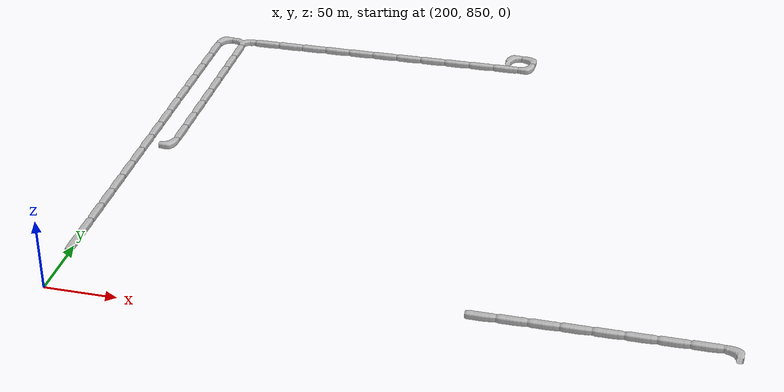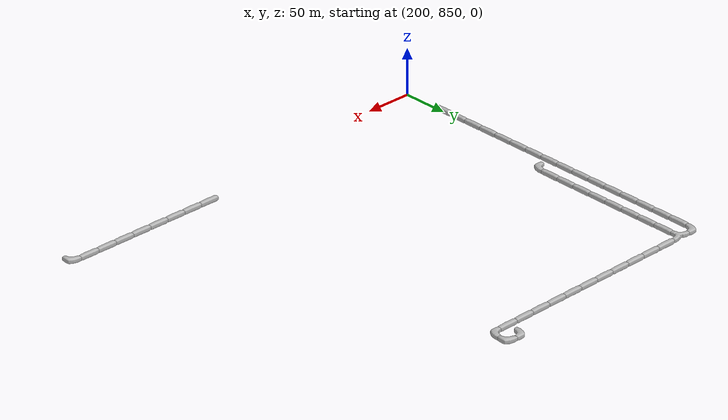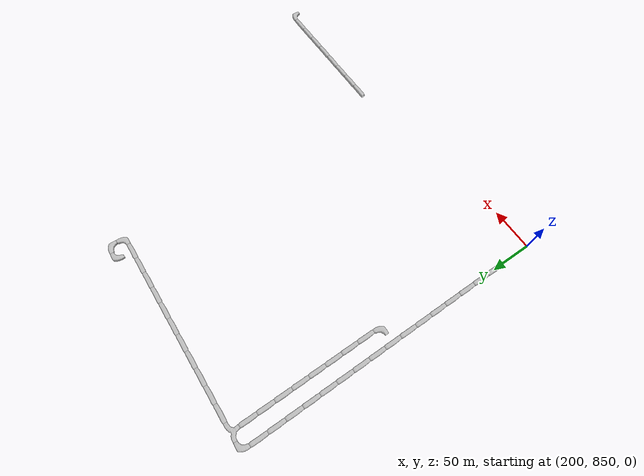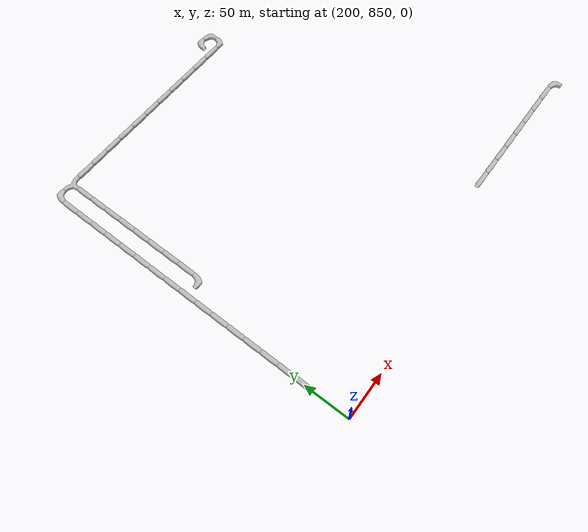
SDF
<sdf version="1.6">
 <world name="cave_8000_0">
  <include>
   <static>true</static>
   <name>cave_24_44</name>
   <pose>480 880 0 0 0 1.5707963267948966</pose>
   <uri>model://cave_straight_20m</uri>
  </include>
  <include>
   <static>true</static>
   <name>cave_25_44</name>
   <pose>500 880 0 0 0 1.5707963267948966</pose>
   <uri>model://cave_straight_20m</uri>
  </include>
  <include>
   <static>true</static>
   <name>cave_26_44</name>
   <pose>520 880 0 0 0 1.5707963267948966</pose>
   <uri>model://cave_straight_20m</uri>
  </include>
  <include>
   <static>true</static>
   <name>cave_27_44</name>
   <pose>540 880 0 0 0 1.5707963267948966</pose>
   <uri>model://cave_straight_20m</uri>
  </include>
  <include>
   <static>true</static>
   <name>cave_28_44</name>
   <pose>560 880 0 0 0 1.5707963267948966</pose>
   <uri>model://cave_straight_20m</uri>
  </include>
  <include>
   <static>true</static>
   <name>cave_29_44</name>
   <pose>580 880 0 0 0 1.5707963267948966</pose>
   <uri>model://cave_straight_20m</uri>
  </include>
  <include>
   <static>true</static>
   <name>cave_30_44</name>
   <pose>600 880 0 0 0 1.5707963267948966</pose>
   <uri>model://cave_straight_20m</uri>
  </include>
  <include>
   <static>true</static>
   <name>cave_31_44</name>
   <pose>620 880 0 0 0 1.5707963267948966</pose>
   <uri>model://cave_straight_20m</uri>
  </include>
  <include>
   <static>true</static>
   <name>cave_32_44</name>
   <pose>640 880 0 0 0 3.141592653589793</pose>
   <uri>model://cave_L_20m</uri>
  </include>
  <include>
   <static>true</static>
   <name>cave_10_45</name>
   <pose>200 900 0 0 0 0.0</pose>
   <uri>model://cave_straight_20m</uri>
  </include>
  <include>
   <static>true</static>
   <name>cave_10_46</name>
   <pose>200 920 0 0 0 0.0</pose>
   <uri>model://cave_straight_20m</uri>
  </include>
  <include>
   <static>true</static>
   <name>cave_10_47</name>
   <pose>200 940 0 0 0 0.0</pose>
   <uri>model://cave_straight_20m</uri>
  </include>
  <include>
   <static>true</static>
   <name>cave_10_48</name>
   <pose>200 960 0 0 0 0.0</pose>
   <uri>model://cave_straight_20m</uri>
  </include>
  <include>
   <static>true</static>
   <name>cave_10_49</name>
   <pose>200 980 0 0 0 0.0</pose>
   <uri>model://cave_straight_20m</uri>
  </include>
  <include>
   <static>true</static>
   <name>cave_10_50</name>
   <pose>200 1000 0 0 0 0.0</pose>
   <uri>model://cave_straight_20m</uri>
  </include>
  <include>
   <static>true</static>
   <name>cave_10_51</name>
   <pose>200 1020 0 0 0 0.0</pose>
   <uri>model://cave_straight_20m</uri>
  </include>
  <include>
   <static>true</static>
   <name>cave_10_52</name>
   <pose>200 1040 0 0 0 0.0</pose>
   <uri>model://cave_straight_20m</uri>
  </include>
  <include>
   <static>true</static>
   <name>cave_10_53</name>
   <pose>200 1060 0 0 0 0.0</pose>
   <uri>model://cave_straight_20m</uri>
  </include>
  <include>
   <static>true</static>
   <name>cave_10_54</name>
   <pose>200 1080 0 0 0 0.0</pose>
   <uri>model://cave_straight_20m</uri>
  </include>
  <include>
   <static>true</static>
   <name>cave_10_55</name>
   <pose>200 1100 0 0 0 0.0</pose>
   <uri>model://cave_straight_20m</uri>
  </include>
  <include>
   <static>true</static>
   <name>cave_10_56</name>
   <pose>200 1120 0 0 0 0.0</pose>
   <uri>model://cave_straight_20m</uri>
  </include>
  <include>
   <static>true</static>
   <name>cave_10_57</name>
   <pose>200 1140 0 0 0 0.0</pose>
   <uri>model://cave_straight_20m</uri>
  </include>
  <include>
   <static>true</static>
   <name>cave_10_58</name>
   <pose>200 1160 0 0 0 0.0</pose>
   <uri>model://cave_straight_20m</uri>
  </include>
  <include>
   <static>true</static>
   <name>cave_10_59</name>
   <pose>200 1180 0 0 0 0.0</pose>
   <uri>model://cave_straight_20m</uri>
  </include>
  <include>
   <static>true</static>
   <name>cave_10_60</name>
   <pose>200 1200 0 0 0 0.0</pose>
   <uri>model://cave_straight_20m</uri>
  </include>
  <include>
   <static>true</static>
   <name>cave_10_61</name>
   <pose>200 1220 0 0 0 -1.5707963267948966</pose>
   <uri>model://cave_L_20m</uri>
  </include>
  <include>
   <static>true</static>
   <name>cave_11_61</name>
   <pose>220 1220 0 0 0 3.141592653589793</pose>
   <uri>model://cave_3way_20m</uri>
  </include>
  <include>
   <static>true</static>
   <name>cave_12_61</name>
   <pose>240 1220 0 0 0 1.5707963267948966</pose>
   <uri>model://cave_straight_20m</uri>
  </include>
  <include>
   <static>true</static>
   <name>cave_13_61</name>
   <pose>260 1220 0 0 0 1.5707963267948966</pose>
   <uri>model://cave_straight_20m</uri>
  </include>
  <include>
   <static>true</static>
   <name>cave_14_61</name>
   <pose>280 1220 0 0 0 1.5707963267948966</pose>
   <uri>model://cave_straight_20m</uri>
  </include>
  <include>
   <static>true</static>
   <name>cave_15_61</name>
   <pose>300 1220 0 0 0 1.5707963267948966</pose>
   <uri>model://cave_straight_20m</uri>
  </include>
  <include>
   <static>true</static>
   <name>cave_16_61</name>
   <pose>320 1220 0 0 0 1.5707963267948966</pose>
   <uri>model://cave_straight_20m</uri>
  </include>
  <include>
   <static>true</static>
   <name>cave_17_61</name>
   <pose>340 1220 0 0 0 1.5707963267948966</pose>
   <uri>model://cave_straight_20m</uri>
  </include>
  <include>
   <static>true</static>
   <name>cave_18_61</name>
   <pose>360 1220 0 0 0 1.5707963267948966</pose>
   <uri>model://cave_straight_20m</uri>
  </include>
  <include>
   <static>true</static>
   <name>cave_19_61</name>
   <pose>380 1220 0 0 0 1.5707963267948966</pose>
   <uri>model://cave_straight_20m</uri>
  </include>
  <include>
   <static>true</static>
   <name>cave_20_61</name>
   <pose>400 1220 0 0 0 1.5707963267948966</pose>
   <uri>model://cave_straight_20m</uri>
  </include>
  <include>
   <static>true</static>
   <name>cave_21_61</name>
   <pose>420 1220 0 0 0 1.5707963267948966</pose>
   <uri>model://cave_straight_20m</uri>
  </include>
  <include>
   <static>true</static>
   <name>cave_22_61</name>
   <pose>440 1220 0 0 0 1.5707963267948966</pose>
   <uri>model://cave_straight_20m</uri>
  </include>
  <include>
   <static>true</static>
   <name>cave_23_61</name>
   <pose>460 1220 0 0 0 1.5707963267948966</pose>
   <uri>model://cave_L_20m</uri>
  </include>
  <include>
   <static>true</static>
   <name>cave_23_62</name>
   <pose>460 1240 0 0 0 3.141592653589793</pose>
   <uri>model://cave_L_20m</uri>
  </include>
  <include>
   <static>true</static>
   <name>cave_22_62</name>
   <pose>440 1240 0 0 0 -1.5707963267948966</pose>
   <uri>model://cave_L_20m</uri>
  </include>
  <include>
   <static>true</static>
   <name>cave_11_60</name>
   <pose>220 1200 0 0 0 0.0</pose>
   <uri>model://cave_straight_20m</uri>
  </include>
  <include>
   <static>true</static>
   <name>cave_11_59</name>
   <pose>220 1180 0 0 0 0.0</pose>
   <uri>model://cave_straight_20m</uri>
  </include>
  <include>
   <static>true</static>
   <name>cave_11_58</name>
   <pose>220 1160 0 0 0 0.0</pose>
   <uri>model://cave_straight_20m</uri>
  </include>
  <include>
   <static>true</static>
   <name>cave_11_57</name>
   <pose>220 1140 0 0 0 0.0</pose>
   <uri>model://cave_straight_20m</uri>
  </include>
  <include>
   <static>true</static>
   <name>cave_11_56</name>
   <pose>220 1120 0 0 0 0.0</pose>
   <uri>model://cave_straight_20m</uri>
  </include>
  <include>
   <static>true</static>
   <name>cave_11_55</name>
   <pose>220 1100 0 0 0 0.0</pose>
   <uri>model://cave_straight_20m</uri>
  </include>
  <include>
   <static>true</static>
   <name>cave_11_54</name>
   <pose>220 1080 0 0 0 0.0</pose>
   <uri>model://cave_straight_20m</uri>
  </include>
  <include>
   <static>true</static>
   <name>cave_11_53</name>
   <pose>220 1060 0 0 0 0.0</pose>
   <uri>model://cave_straight_20m</uri>
  </include>
  <include>
   <static>true</static>
   <name>cave_11_52</name>
   <pose>220 1040 0 0 0 1.5707963267948966</pose>
   <uri>model://cave_L_20m</uri>
  </include>
 </world>
</sdf>
